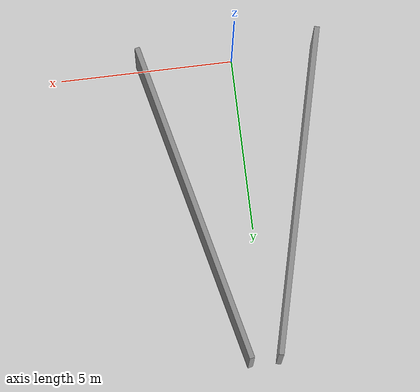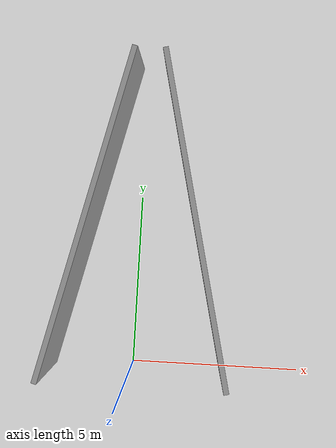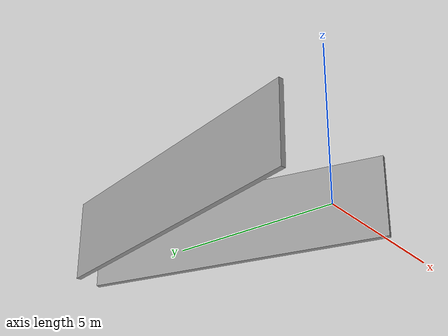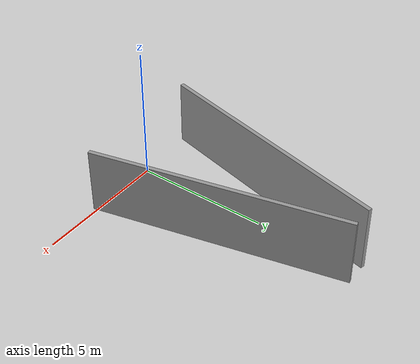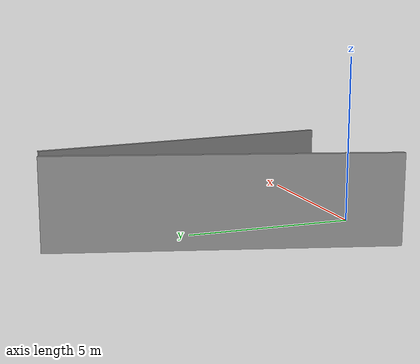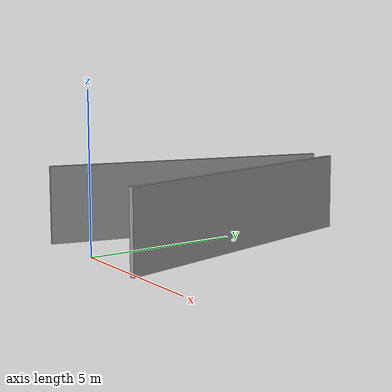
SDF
<?xml version='1.0'?>
<sdf version='1.7'>
  <model name='ten_corridor'>
    <pose>0.145722 4.40088 0 0 -0 0</pose>
    <link name='Wall_12'>
      <collision name='Wall_12_Collision'>
        <geometry>
          <box>
            <size>9.39468 0.15 2.5</size>
          </box>
        </geometry>
        <pose>0 0 1.25 0 -0 0</pose>
      </collision>
      <visual name='Wall_12_Visual'>
        <pose>0 0 1.25 0 -0 0</pose>
        <geometry>
          <box>
            <size>9.39468 0.15 2.5</size>
          </box>
        </geometry>
        <material>
          <script>
            <uri>file://media/materials/scripts/gazebo.material</uri>
            <name>Gazebo/Grey</name>
          </script>
          <ambient>1 1 1 1</ambient>
        </material>
        <meta>
          <layer>0</layer>
        </meta>
      </visual>
      <pose>-1.47867 0 0 0 -0 1.33692</pose>
    </link>
    <link name='Wall_14'>
      <collision name='Wall_14_Collision'>
        <geometry>
          <box>
            <size>9.38666 0.15 2.5</size>
          </box>
        </geometry>
        <pose>0 0 1.25 0 -0 0</pose>
      </collision>
      <visual name='Wall_14_Visual'>
        <pose>0 0 1.25 0 -0 0</pose>
        <geometry>
          <box>
            <size>9.38666 0.15 2.5</size>
          </box>
        </geometry>
        <material>
          <script>
            <uri>file://media/materials/scripts/gazebo.material</uri>
            <name>Gazebo/Grey</name>
          </script>
          <ambient>1 1 1 1</ambient>
        </material>
        <meta>
          <layer>0</layer>
        </meta>
      </visual>
      <pose>1.49633 0 0 0 -0 1.801</pose>
    </link>
    <static>1</static>
  </model>
</sdf>
